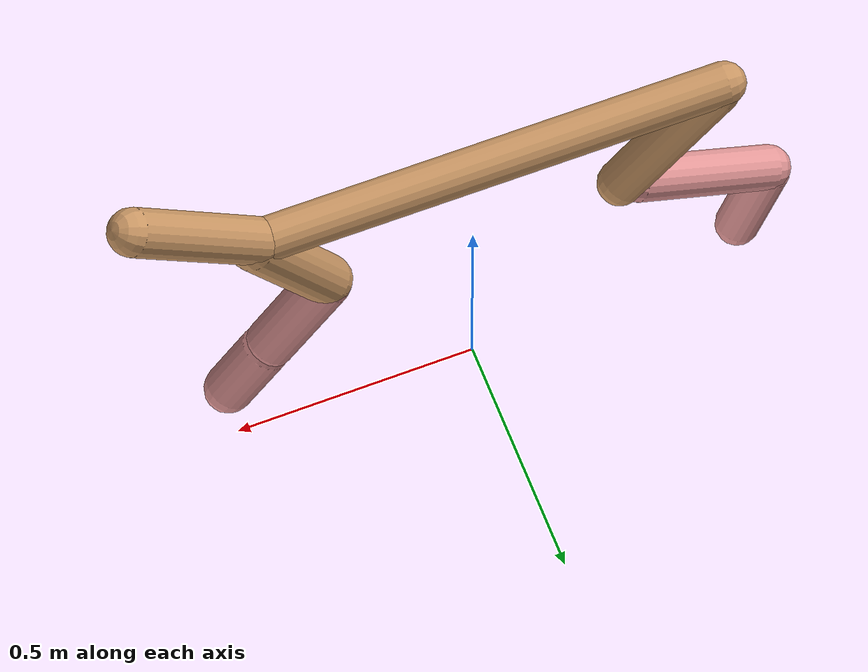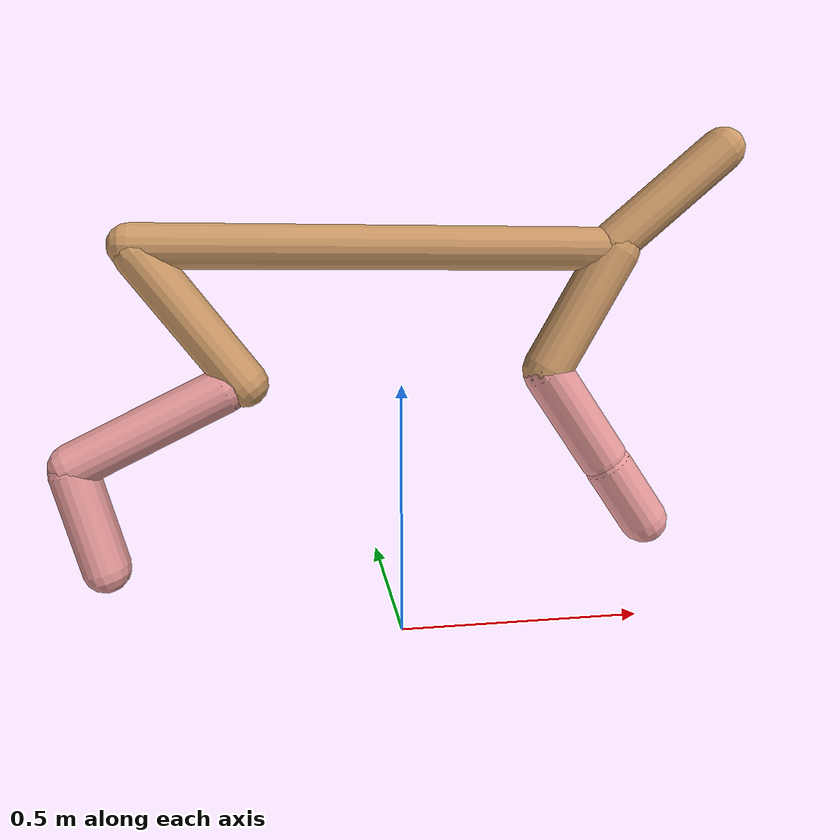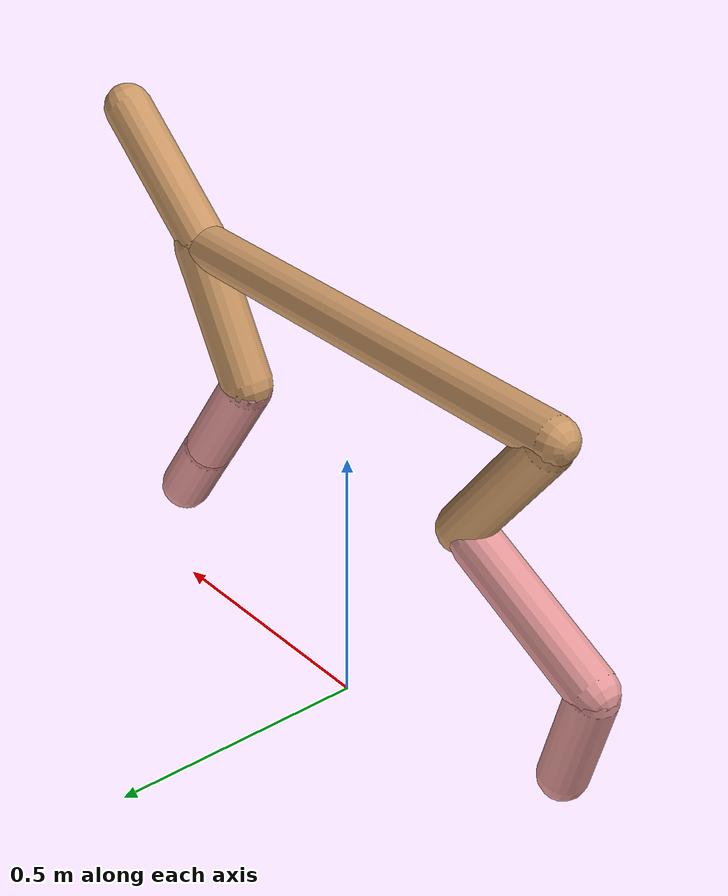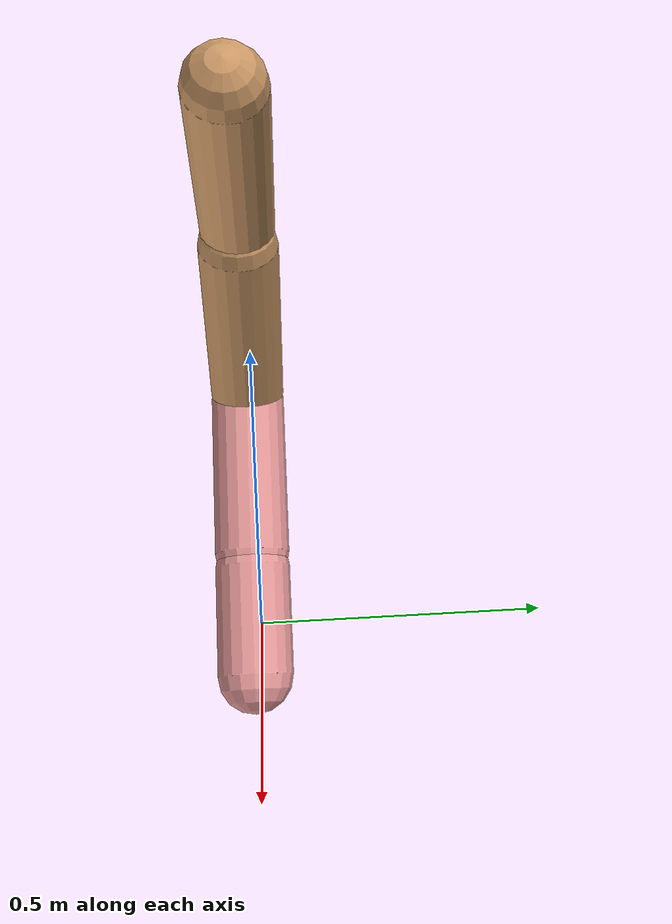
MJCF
<mujoco model="cheetah">
  <compiler angle="radian" coordinate="local" inertiafromgeom="true" settotalmass="14" />
  <default>
    <joint armature=".1" damping=".01" limited="true" solimplimit="0 .8 .03" solreflimit=".02 1" stiffness="8" />
    <geom conaffinity="0" condim="3" contype="1" friction="0.8 .1 .1" rgba="0.8 0.6 .4 1" solimp="0.0 0.8 0.01" solref="0.02 1" />
    <motor ctrllimited="true" ctrlrange="-1 1" />
  </default>
  <size nstack="300000" nuser_geom="1" />
  <option gravity="0 0 -9.81" timestep="0.01" />
  <worldbody>
    <body name="torso" pos="0.0 0.0 0.7668361214506247">
      <joint armature="0" axis="1 0 0" damping="0" limited="false" name="ignorex" pos="0 0 0" stiffness="0" type="slide" />
      <joint armature="0" axis="0 0 1" damping="0" limited="false" name="ignorez" pos="0 0 0" stiffness="0" type="slide" />
      <joint armature="0" axis="0 1 0" damping="0" limited="false" name="ignorey" pos="0 0 0" stiffness="0" type="hinge" />
      <geom fromto="-0.5 0.0 0.0 0.43276433263110237 0.0 0.0" name="torso" size="0.04264999819568145" type="capsule" />
      <geom axisangle="0 1 0 .87" name="head" pos="0.5327643326311023 0.0 0.1" size="0.04538379230249488 0.15" type="capsule" />

      <body name="bthigh" pos="-.5 0 0">
        <joint axis="0 1 0" damping="6" name="bthigh" pos="0 0 0" range="-.52 1.05" stiffness="240" type="hinge" />
        <geom axisangle="0 1 0 -3.8" name="bthigh" pos="0.1050075015737084 0.0 -0.13650975204582091" size="0.04500704255190227 0.1532129132291022" type="capsule" />
        <body name="bshin" pos="0.1700150031474168 0.0 -0.2630195040916418">
          <joint axis="0 1 0" damping="4.5" name="bshin" pos="0 0 0" range="-.785 .785" stiffness="180" type="hinge" />
          <geom axisangle="0 1 0 -2.03" name="bshin" pos="-0.14759915818217095 0.0 -0.07379957909108548" rgba="0.9 0.6 0.6 1" size="0.04500704255190227 0.158496117133554" type="capsule" />
          <body name="bfoot" pos="-0.2951983163643419 0.0 -0.14759915818217095">
            <joint axis="0 1 0" damping="3" name="bfoot" pos="0 0 0" range="-.4 .785" stiffness="120" type="hinge" />
            <geom axisangle="0 1 0 -.27" name="bfoot" pos="0.031573149768561834 0.0 -0.1020865175850166" rgba="0.9 0.6 0.6 1" size="0.04500704255190227 0.09932423340369384" type="capsule" />
            <inertial mass="10" />
          </body>
        </body>
      </body>
      <body name="fthigh" pos="0.43276433263110237 0.0 0.0">
        <joint axis="0 1 0" damping="4.5" name="fthigh" pos="0 0 0" range="-1.5 0.8" stiffness="180" type="hinge" />
        <geom axisangle="0 1 0 .52" name="fthigh" pos="-0.07132126962495579 0.0 -0.12226503364278132" size="0.04925016925493536 0.13562223775137994" type="capsule" />
        <body name="fshin" pos="-0.14264253924991158 0.0 -0.24453006728556265">
          <joint axis="0 1 0" damping="3" name="fshin" pos="0 0 0" range="-1.2 1.1" stiffness="120" type="hinge" />
          <geom axisangle="0 1 0 -.6" name="fshin" pos="0.06622361891681883 0.0 -0.09169424157713375" rgba="0.9 0.6 0.6 1" size="0.04925016925493536 0.10808990377177649" type="capsule" />
          <body name="ffoot" pos="0.13244723783363765 0.0 -0.1833884831542675">
            <joint axis="0 1 0" damping="1.5" name="ffoot" pos="0 0 0" range="-3.1 -0.3" stiffness="60" type="hinge" />
            <geom axisangle="0 1 0 -.6" name="ffoot" pos="0.04574631314225659 0.0 -0.07116093155462137" rgba="0.9 0.6 0.6 1" size="0.04925016925493536 0.07138012513230524" type="capsule" />
            <inertial mass="10" />
          </body>
        </body>
      </body>
    </body>
  </worldbody>
  <actuator>
    <motor gear="120" joint="bthigh" name="bthigh" />
    <motor gear="90" joint="bshin" name="bshin" />
    <motor gear="60" joint="bfoot" name="bfoot" />
    <motor gear="120" joint="fthigh" name="fthigh" />
    <motor gear="60" joint="fshin" name="fshin" />
    <motor gear="30" joint="ffoot" name="ffoot" />
  </actuator>
</mujoco>
